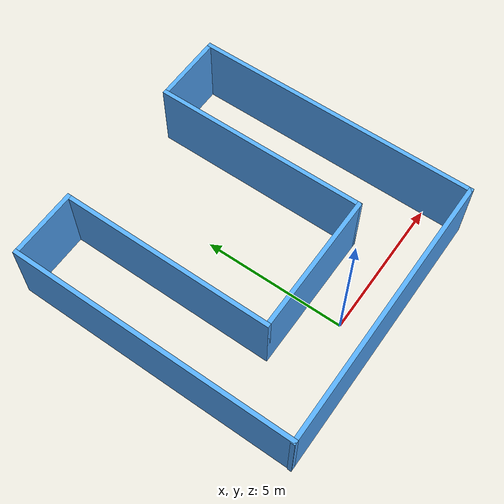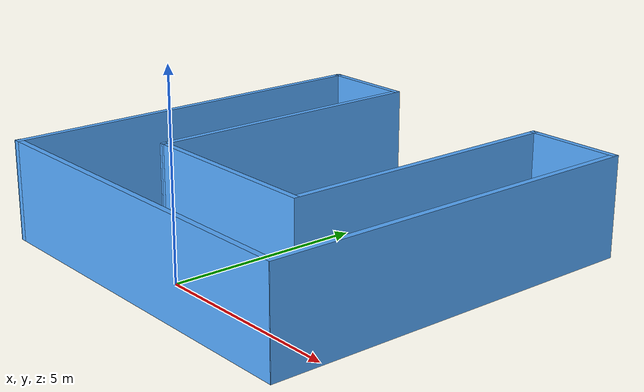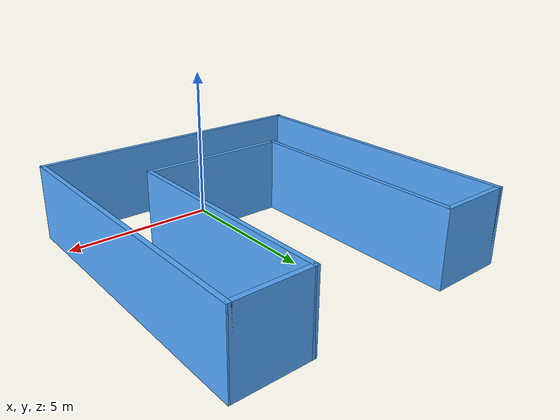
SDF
<?xml version='1.0'?>
<sdf version='1.6'>
  <model name='HomeService'>
    <pose frame=''>0.237435 3.68428 0 0 -0 0</pose>
    <link name='Wall_12'>
      <collision name='Wall_12_Collision'>
        <geometry>
          <box>
            <size>9.75 0.15 2.5</size>
          </box>
        </geometry>
        <pose frame=''>0 0 1.25 0 -0 0</pose>
      </collision>
      <visual name='Wall_12_Visual'>
        <pose frame=''>0 0 1.25 0 -0 0</pose>
        <geometry>
          <box>
            <size>9.75 0.15 2.5</size>
          </box>
        </geometry>
        <material>
          <script>
            <uri>file://media/materials/scripts/gazebo.material</uri>
            <name>Gazebo/Grey</name>
          </script>
          <ambient>0.333333 0.666667 1 1</ambient>
        </material>
      </visual>
      <pose frame=''>-0.009696 -4.925 0 0 -0 3.14159</pose>
    </link>
    <link name='Wall_14'>
      <collision name='Wall_14_Collision'>
        <geometry>
          <box>
            <size>10 0.15 2.5</size>
          </box>
        </geometry>
        <pose frame=''>0 0 1.25 0 -0 0</pose>
      </collision>
      <visual name='Wall_14_Visual'>
        <pose frame=''>0 0 1.25 0 -0 0</pose>
        <geometry>
          <box>
            <size>10 0.15 2.5</size>
          </box>
        </geometry>
        <material>
          <script>
            <uri>file://media/materials/scripts/gazebo.material</uri>
            <name>Gazebo/Grey</name>
          </script>
          <ambient>0.333333 0.666667 1 1</ambient>
        </material>
      </visual>
      <pose frame=''>-4.78657 0 0 0 -0 1.5708</pose>
    </link>
    <link name='Wall_20'>
      <collision name='Wall_20_Collision'>
        <geometry>
          <box>
            <size>10 0.15 2.5</size>
          </box>
        </geometry>
        <pose frame=''>0 0 1.25 0 -0 0</pose>
      </collision>
      <visual name='Wall_20_Visual'>
        <pose frame=''>0 0 1.25 0 -0 0</pose>
        <geometry>
          <box>
            <size>10 0.15 2.5</size>
          </box>
        </geometry>
        <material>
          <script>
            <uri>file://media/materials/scripts/gazebo.material</uri>
            <name>Gazebo/Grey</name>
          </script>
          <ambient>0.333333 0.666667 1 1</ambient>
        </material>
      </visual>
      <pose frame=''>4.80969 0 0 0 0 -1.5708</pose>
    </link>
    <link name='Wall_22'>
      <collision name='Wall_22_Collision'>
        <geometry>
          <box>
            <size>2.5 0.15 2.5</size>
          </box>
        </geometry>
        <pose frame=''>0 0 1.25 0 -0 0</pose>
      </collision>
      <visual name='Wall_22_Visual'>
        <pose frame=''>0 0 1.25 0 -0 0</pose>
        <geometry>
          <box>
            <size>2.5 0.15 2.5</size>
          </box>
        </geometry>
        <material>
          <script>
            <uri>file://media/materials/scripts/gazebo.material</uri>
            <name>Gazebo/Grey</name>
          </script>
          <ambient>0.333333 0.666667 1 1</ambient>
        </material>
      </visual>
      <pose frame=''>-3.61157 4.925 0 0 -0 0</pose>
    </link>
    <link name='Wall_23'>
      <collision name='Wall_23_Collision'>
        <geometry>
          <box>
            <size>7.5 0.15 2.5</size>
          </box>
        </geometry>
        <pose frame=''>0 0 1.25 0 -0 0</pose>
      </collision>
      <visual name='Wall_23_Visual'>
        <pose frame=''>0 0 1.25 0 -0 0</pose>
        <geometry>
          <box>
            <size>7.5 0.15 2.5</size>
          </box>
        </geometry>
        <material>
          <script>
            <uri>file://media/materials/scripts/gazebo.material</uri>
            <name>Gazebo/Grey</name>
          </script>
          <ambient>0.333333 0.666667 1 1</ambient>
        </material>
      </visual>
      <pose frame=''>-2.43657 1.25 0 0 0 -1.5708</pose>
    </link>
    <link name='Wall_24'>
      <collision name='Wall_24_Collision'>
        <geometry>
          <box>
            <size>5 0.15 2.5</size>
          </box>
        </geometry>
        <pose frame=''>0 0 1.25 0 -0 0</pose>
      </collision>
      <visual name='Wall_24_Visual'>
        <pose frame=''>0 0 1.25 0 -0 0</pose>
        <geometry>
          <box>
            <size>5 0.15 2.5</size>
          </box>
        </geometry>
        <material>
          <script>
            <uri>file://media/materials/scripts/gazebo.material</uri>
            <name>Gazebo/Grey</name>
          </script>
          <ambient>0.333333 0.666667 1 1</ambient>
        </material>
      </visual>
      <pose frame=''>-0.011566 -2.425 0 0 -0 0</pose>
    </link>
    <link name='Wall_25'>
      <collision name='Wall_25_Collision'>
        <geometry>
          <box>
            <size>7.5 0.15 2.5</size>
          </box>
        </geometry>
        <pose frame=''>0 0 1.25 0 -0 0</pose>
      </collision>
      <visual name='Wall_25_Visual'>
        <pose frame=''>0 0 1.25 0 -0 0</pose>
        <geometry>
          <box>
            <size>7.5 0.15 2.5</size>
          </box>
        </geometry>
        <material>
          <script>
            <uri>file://media/materials/scripts/gazebo.material</uri>
            <name>Gazebo/Grey</name>
          </script>
          <ambient>0.333333 0.666667 1 1</ambient>
        </material>
      </visual>
      <pose frame=''>2.41343 1.25 0 0 -0 1.5708</pose>
    </link>
    <link name='Wall_26'>
      <collision name='Wall_26_Collision'>
        <geometry>
          <box>
            <size>2.5 0.15 2.5</size>
          </box>
        </geometry>
        <pose frame=''>0 0 1.25 0 -0 0</pose>
      </collision>
      <visual name='Wall_26_Visual'>
        <pose frame=''>0 0 1.25 0 -0 0</pose>
        <geometry>
          <box>
            <size>2.5 0.15 2.5</size>
          </box>
        </geometry>
        <material>
          <script>
            <uri>file://media/materials/scripts/gazebo.material</uri>
            <name>Gazebo/Grey</name>
          </script>
          <ambient>0.333333 0.666667 1 1</ambient>
        </material>
      </visual>
      <pose frame=''>3.58843 4.925 0 0 -0 0</pose>
    </link>
    <static>1</static>
  </model>
</sdf>
